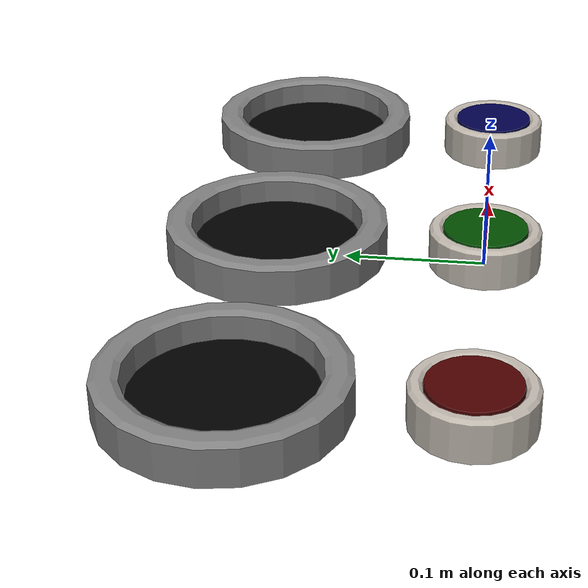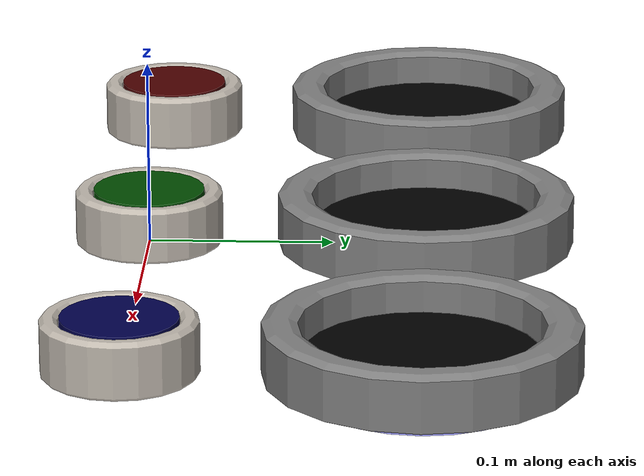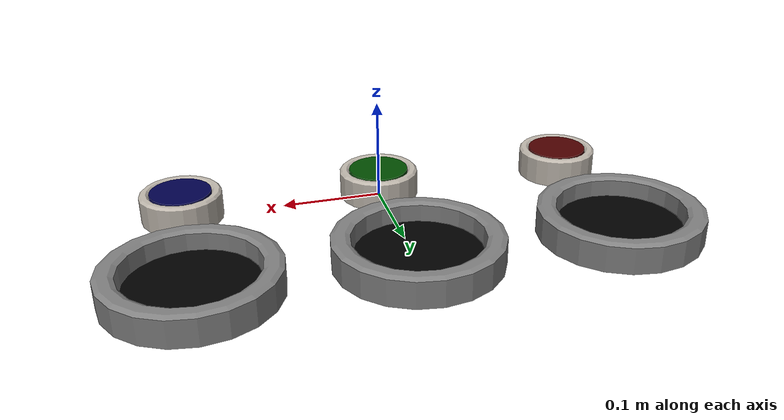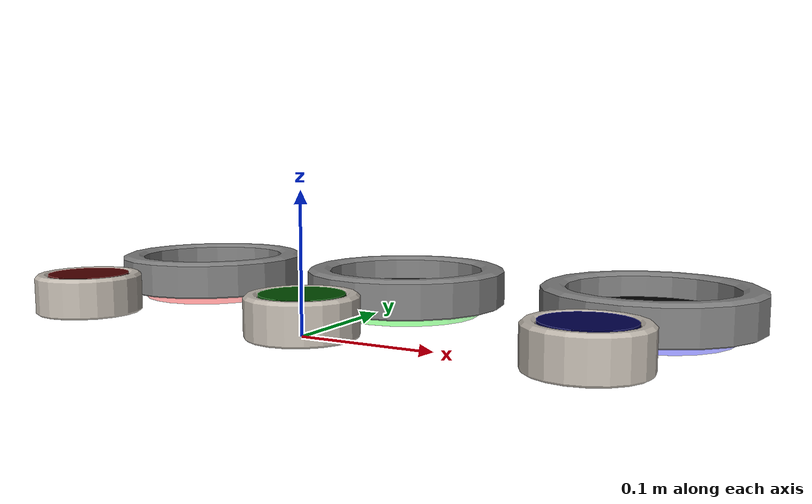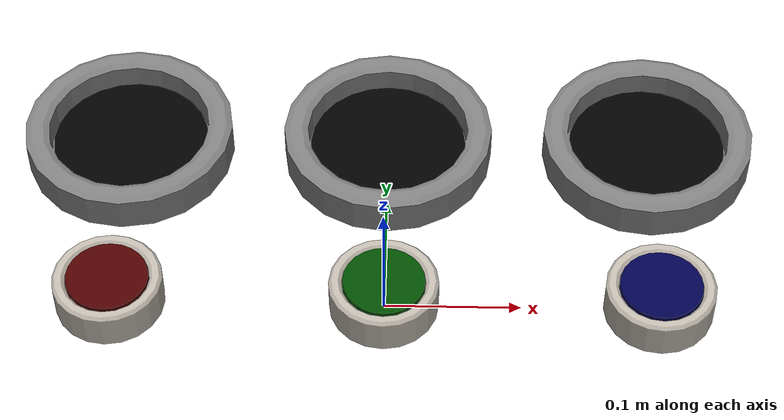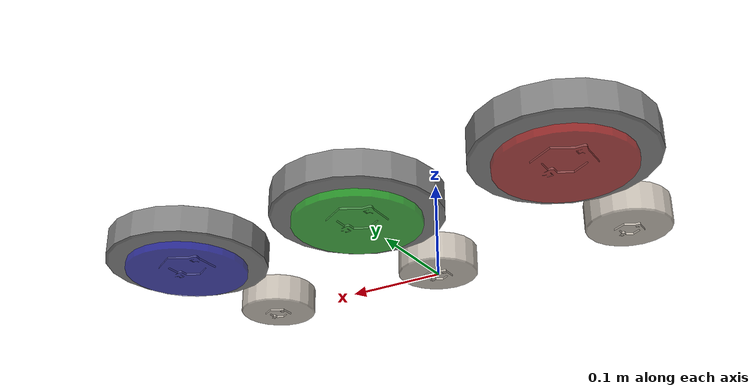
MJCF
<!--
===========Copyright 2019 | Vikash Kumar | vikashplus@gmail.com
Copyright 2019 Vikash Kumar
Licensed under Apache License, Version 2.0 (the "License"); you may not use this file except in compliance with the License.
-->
<mujoco model="lightButtons">
    <compiler angle="radian" meshdir="" texturedir=""/>

    <include file="../furniture_sim/lightButtons/lightButtons_assets.xml"/>

    <worldbody>

        <body>
            <include file="../furniture_sim/lightButtons/lights_body.xml" />
		    <include file="../furniture_sim/lightButtons/buttons_body.xml" />
        </body>

    </worldbody>

</mujoco>

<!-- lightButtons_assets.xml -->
<mujocoinclude>

    <asset>
        <mesh name="ButtonHolder" file="../furniture_sim/lightButtons/meshes/ButtonHolder.stl" scale="0.01 0.01 0.01" />
        <mesh name="lightsHolder" file="../furniture_sim/lightButtons/meshes/ButtonHolder.stl" scale="0.02 0.01 0.02" />
        <texture name="T_Metal_lightButton" type="cube" height="1" width="1" file="../furniture_sim/common/textures/metal0.png" />
        <material name="M_Metal_lightButton" texture="T_Metal_lightButton" texrepeat="3 3" reflectance="0.7" texuniform="false" />
	</asset>

    <equality>
        <joint joint1='red button' joint2='red light' polycoef='0 1 0 0 0'/>
        <joint joint1='blue button' joint2='blue light' polycoef='0 1 0 0 0'/>
        <joint joint1='green button' joint2='green light' polycoef='0 1 0 0 0'/>
    </equality>

    <default>
        <default class="class_button_col" >
            <geom contype="1" conaffinity="1" rgba="0.8 0.9 0.7 1.0" group='4'/>
            <joint limited="true" damping="0" stiffness="0" range="-0.005 0" />
        </default>

        <default class="viz_holder" >
            <geom contype="0" conaffinity="0" group="1" material='M_Metal_lightButton'/>
        </default>

        <default class="class_lights_viz" >
            <geom contype="0" conaffinity="0" group="1" />
            <joint limited="true" damping="0" stiffness="0" range="-0.005 0" />
        </default>

         <default class="class_lights_col" >
            <geom contype="1" conaffinity="1" rgba="0.8 0.9 0.7 1.0" group='4'/>
        </default>
   </default>

</mujocoinclude>

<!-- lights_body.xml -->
<mujocoinclude>

	<body name="red light" pos="-.2 .15 0" childclass="class_lights_viz" >
        <geom type="mesh" mesh="lightsHolder" euler="-1.57 0 3.14"/>
    	<geom type="cylinder" size=".06 .001" pos="0 0 .011" rgba="0 0 0 1.0" group="1" contype="0" conaffinity="0" />
    	<geom type="cylinder" size=".08 .02" pos="0 0 .011" class='class_lights_col'/>

    	<body>
	        <geom type="cylinder" size=".06 .0075" rgba=".4 .5 .6 1" group="3" mass="0.01" />
	        <geom type="cylinder" size=".06 .0075" rgba="1 0 0 .4" group="1" mass="0.01" />
	        <joint name="red light" type="slide" axis="0 0 -1" />
	    </body>
    </body>

    <body name="green light" pos="0 .15 0" childclass="class_lights_viz" >
        <geom type="mesh" mesh="lightsHolder" euler="-1.57 0 3.14"/>
    	<geom type="cylinder" size=".06 .001" pos="0 0 .011" rgba="0 0 0 1.0" group="1" contype="0" conaffinity="0" />
    	<geom type="cylinder" size=".08 .02" pos="0 0 .011" class='class_lights_col'/>

        <body>
	        <geom type="cylinder" size=".06 .0075" rgba=".4 .5 .6 1" group="3" mass="0.01" />
	        <geom type="cylinder" size=".06 .0075" rgba="0 1 0 .4" group="1" mass="0.01" />
	        <joint name="green light" type="slide" axis="0 0 -1" />
	    </body>
    </body>

    <body name="blue light" pos=".2 .15 0" childclass="class_lights_viz" >
        <geom type="mesh" mesh="lightsHolder" euler="-1.57 0 3.14"/>
    	<geom type="cylinder" size=".06 .001" pos="0 0 .011" rgba="0 0 0 1.0" group="1" contype="0" conaffinity="0" />
    	<geom type="cylinder" size=".08 .02" pos="0 0 .011" class='class_lights_col'/>

        <body>
	        <geom type="cylinder" size=".06 .0075" rgba=".4 .5 .6 1" group="3" mass="0.01" />
	        <geom type="cylinder" size=".06 .0075" rgba="0 0 1 .4" group="1" mass="0.01" />
	        <joint name="blue light" type="slide" axis="0 0 -1" />
	    </body>
    </body>

</mujocoinclude>

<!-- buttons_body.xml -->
<mujocoinclude>

    <body name="red button" pos="-.2 0 0" childclass='class_button_col'>
        <geom class="viz_holder" type="mesh" mesh="ButtonHolder" euler="-1.57 0 3.14"/>
        <geom type="box" size=".002 .015 .015" pos="0.035 0 .015" />
        <geom type="box" size=".002 .015 .015" pos="-0.035 0 .015" />
        <geom type="box" size=".002 .015 .015" pos="0 0.035 .015" euler="0 0 1.57" />
        <geom type="box" size=".002 .015 .015" pos="0 -0.035 .015" rgba="0.8 0.9 0.7 1.0" euler="0 0 1.57" />
        <geom type="box" size=".002 .015 .015" pos="0.025 0.025 .015" euler="0 0 0.785" />
        <geom type="box" size=".002 .015 .015" pos="-0.025 0.025 .015" rgba="0.8 0.9 0.7 1.0" euler="0 0 -.785" />
        <geom type="box" size=".002 .015 .015" pos="0.025 -0.025 .015" euler="0 0 -0.785" />
        <geom type="box" size=".002 .015 .015" pos="-0.025 -0.025 .015" rgba="0.8 0.9 0.7 1.0" euler="0 0 .785" />
        <geom type="box" size=".02 .02 .002" pos="0 0 0" />
        <body >
            <geom type="cylinder" size=".03 .01" pos='0 0 .02' class='class_button_col' mass="0.01" />
            <geom type="cylinder" size=".03 .01" pos='0 0 .02' rgba="0.3 0 0 1.0" class="viz_holder"/>
            <joint name="red button" type="slide" pos="0 0 0" axis="0 0 1" damping="1" stiffness="10" />
        </body>
    </body>

    <body name="green button" pos="0 0 0" childclass='class_button_col'>
        <geom class="viz_holder" type="mesh" mesh="ButtonHolder" euler="-1.57 0 3.14"/>
        <geom type="box" size=".002 .015 .015" pos="0.035 0 .015" />
        <geom type="box" size=".002 .015 .015" pos="-0.035 0 .015" />
        <geom type="box" size=".002 .015 .015" pos="0 0.035 .015" euler="0 0 1.57" />
        <geom type="box" size=".002 .015 .015" pos="0 -0.035 .015" rgba="0.8 0.9 0.7 1.0" euler="0 0 1.57" />
        <geom type="box" size=".002 .015 .015" pos="0.025 0.025 .015" euler="0 0 0.785" />
        <geom type="box" size=".002 .015 .015" pos="-0.025 0.025 .015" rgba="0.8 0.9 0.7 1.0" euler="0 0 -.785" />
        <geom type="box" size=".002 .015 .015" pos="0.025 -0.025 .015" euler="0 0 -0.785" />
        <geom type="box" size=".002 .015 .015" pos="-0.025 -0.025 .015" rgba="0.8 0.9 0.7 1.0" euler="0 0 .785" />
        <geom type="box" size=".02 .02 .002" pos="0 0 0" />
        <body >
            <geom type="cylinder"  size=".03 .01" pos='0 0 .02' class='class_button_col' mass="0.01" />
            <geom type="cylinder"  size=".03 .01" pos='0 0 .02' rgba="0 0.3 0 1.0" class="viz_holder"/>
            <joint name="green button" type="slide" pos="0 0 0" axis="0 0 1" damping="1" stiffness="10" />
        </body>
    </body>

    <body name="blue button" pos="0.2 0 0" childclass='class_button_col'>
        <geom class="viz_holder" type="mesh" mesh="ButtonHolder" euler="-1.57 0 3.14" />
        <geom type="box" size=".002 .015 .015" pos="0.035 0 .015" />
        <geom type="box" size=".002 .015 .015" pos="-0.035 0 .015" />
        <geom type="box" size=".002 .015 .015" pos="0 0.035 .015" euler="0 0 1.57" />
        <geom type="box" size=".002 .015 .015" pos="0 -0.035 .015" rgba="0.8 0.9 0.7 1.0" euler="0 0 1.57" />
        <geom type="box" size=".002 .015 .015" pos="0.025 0.025 .015" euler="0 0 0.785" />
        <geom type="box" size=".002 .015 .015" pos="-0.025 0.025 .015" rgba="0.8 0.9 0.7 1.0" euler="0 0 -.785" />
        <geom type="box" size=".002 .015 .015" pos="0.025 -0.025 .015" euler="0 0 -0.785" />
        <geom type="box" size=".002 .015 .015" pos="-0.025 -0.025 .015" rgba="0.8 0.9 0.7 1.0" euler="0 0 .785" />
        <geom type="box" size=".02 .02 .002" pos="0 0 0" />
        <body >
            <geom type="cylinder"  size=".03 .01" pos='0 0 .02' class='class_button_col' mass="0.01" />
            <geom type="cylinder"  size=".03 .01" pos='0 0 .02' rgba="0 0 0.3 1.0" class="viz_holder"/>
            <joint name="blue button" type="slide" pos="0 0 0" axis="0 0 1" damping="1" stiffness="10" />
        </body>
    </body>

</mujocoinclude>
